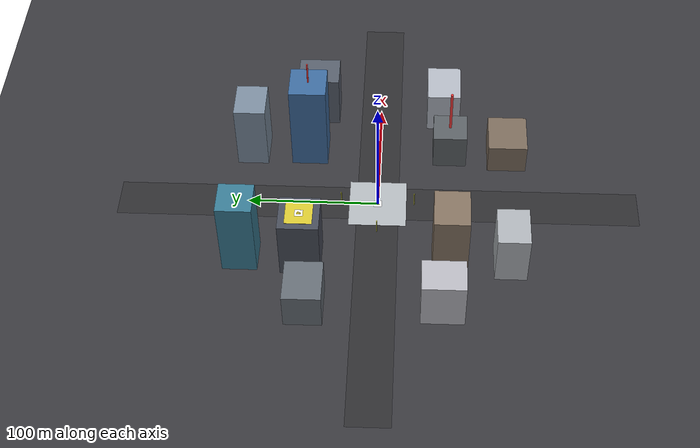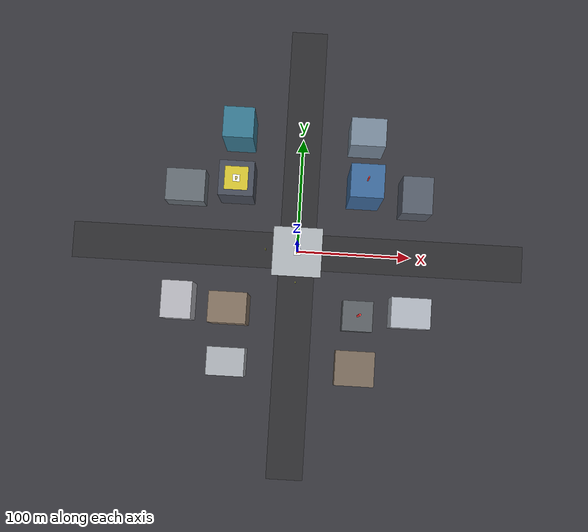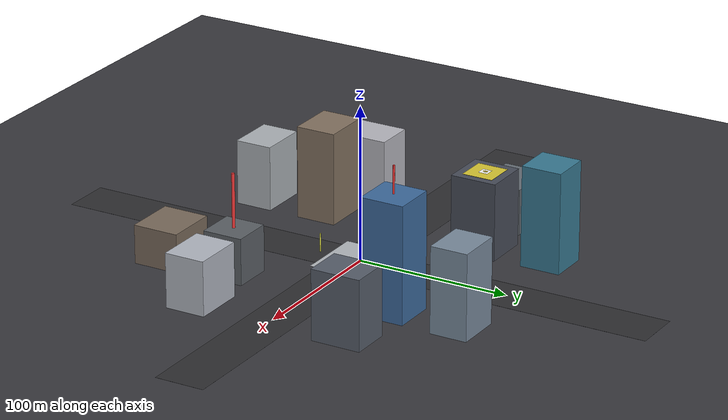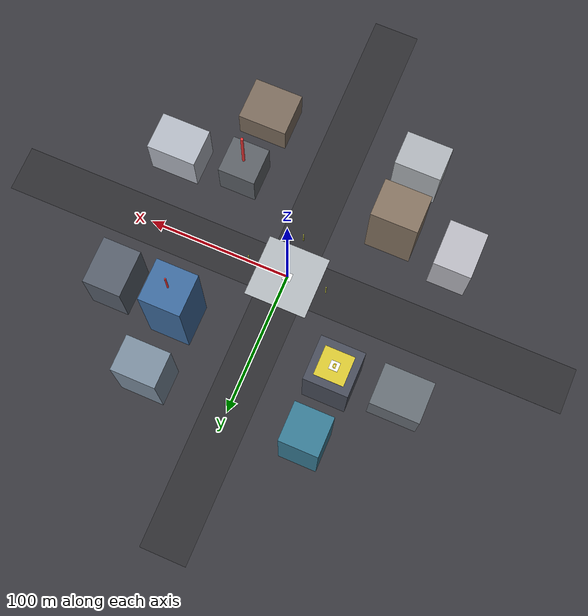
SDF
<?xml version="1.0" encoding="UTF-8"?>
<sdf version="1.9">
  <world name="city">
    <!-- ── Physics Engine Configuration (250 Hz ODE) ── -->
    <physics type="ode">
      <max_step_size>0.004</max_step_size>
      <real_time_factor>1.0</real_time_factor>
      <real_time_update_rate>250</real_time_update_rate>
    </physics>
    <gravity>0 0 -9.80665</gravity>
    <magnetic_field>6e-06 2.3e-05 -4.2e-05</magnetic_field>
    <atmosphere type="adiabatic"/>

    <scene>
      <grid>false</grid>
      <ambient>0.65 0.67 0.72 1.0</ambient>
      <background>0.70 0.80 0.92 1.0</background>
      <shadows>true</shadows>
    </scene>

    <!-- ── Sun Light ── -->
    <light name="sun" type="directional">
      <pose>40 50 500 0 0 0</pose>
      <cast_shadows>true</cast_shadows>
      <intensity>1.35</intensity>
      <direction>-0.35 -0.4 -0.84</direction>
      <diffuse>0.98 0.96 0.92 1.0</diffuse>
      <specular>0.3 0.3 0.3 1.0</specular>
    </light>

    <!-- Master Asphalt Ground Plane (800m x 800m) -->
    <model name="city_ground">
      <static>true</static>
      <link name="ground_link">
        <collision name="collision">
          <geometry>
            <plane>
              <normal>0 0 1</normal>
              <size>800 800</size>
            </plane>
          </geometry>
        </collision>
        <visual name="asphalt">
          <geometry>
            <plane>
              <normal>0 0 1</normal>
              <size>800 800</size>
            </plane>
          </geometry>
          <material>
            <ambient>0.18 0.18 0.20 1.0</ambient>
            <diffuse>0.22 0.22 0.24 1.0</diffuse>
            <specular>0.08 0.08 0.08 1.0</specular>
          </material>
        </visual>
      </link>
    </model>

    <!-- Central Plaza (44m x 44m granite drone staging area at origin) -->
    <model name="central_plaza">
      <static>true</static>
      <pose>0 0 0.02 0 0 0</pose>
      <link name="plaza_link">
        <collision name="plaza_col">
          <geometry>
            <box>
              <size>44.0 44.0 0.04</size>
            </box>
          </geometry>
        </collision>
        <visual name="plaza_vis">
          <geometry>
            <box>
              <size>44.0 44.0 0.04</size>
            </box>
          </geometry>
          <material>
            <ambient>0.62 0.64 0.66 1.0</ambient>
            <diffuse>0.70 0.72 0.74 1.0</diffuse>
            <specular>0.15 0.15 0.15 1.0</specular>
          </material>
        </visual>
      </link>
    </model>

    <!-- Ground Level Primary Dronepad at Origin (0, 0, 0.05) with 'D' Identifier -->
    <include>
      <name>takeoff_dronepad</name>
      <uri>model://dronepad</uri>
      <pose>0 0 0.045 0 0 0</pose>
    </include>

    <!-- 3D Geometric Relief Letter 'D' on Ground Dronepad -->
    <model name="ground_letter_d">
      <static>true</static>
      <pose>0 0 0.052 0 0 0</pose>
      <link name="d_spine">
        <visual name="spine_vis">
          <pose>-0.7 0 0 0 0 0</pose>
          <geometry>
            <box>
              <size>0.6 3.0 0.015</size>
            </box>
          </geometry>
          <material>
            <ambient>0.95 0.82 0.0 1.0</ambient>
            <diffuse>1.0 0.86 0.0 1.0</diffuse>
          </material>
        </visual>
        <visual name="top_bar_vis">
          <pose>0.0 1.2 0 0 0 0</pose>
          <geometry>
            <box>
              <size>1.0 0.6 0.015</size>
            </box>
          </geometry>
          <material>
            <ambient>0.95 0.82 0.0 1.0</ambient>
            <diffuse>1.0 0.86 0.0 1.0</diffuse>
          </material>
        </visual>
        <visual name="bottom_bar_vis">
          <pose>0.0 -1.2 0 0 0 0</pose>
          <geometry>
            <box>
              <size>1.0 0.6 0.015</size>
            </box>
          </geometry>
          <material>
            <ambient>0.95 0.82 0.0 1.0</ambient>
            <diffuse>1.0 0.86 0.0 1.0</diffuse>
          </material>
        </visual>
        <visual name="right_curve_vis">
          <pose>0.7 0 0 0 0 0</pose>
          <geometry>
            <box>
              <size>0.6 1.8 0.015</size>
            </box>
          </geometry>
          <material>
            <ambient>0.95 0.82 0.0 1.0</ambient>
            <diffuse>1.0 0.86 0.0 1.0</diffuse>
          </material>
        </visual>
      </link>
    </model>

    <!-- North-South Main Avenue Roadway (32m wide corridor) -->
    <model name="avenue_ns">
      <static>true</static>
      <pose>0 0 0.01 0 0 0</pose>
      <link name="link">
        <visual name="road">
          <geometry>
            <box>
              <size>32.0 400.0 0.02</size>
            </box>
          </geometry>
          <material>
            <ambient>0.14 0.14 0.15 1.0</ambient>
            <diffuse>0.18 0.18 0.19 1.0</diffuse>
          </material>
        </visual>
      </link>
    </model>

    <!-- East-West Main Boulevard Roadway (32m wide corridor) -->
    <model name="boulevard_ew">
      <static>true</static>
      <pose>0 0 0.01 0 0 0</pose>
      <link name="link">
        <visual name="road">
          <geometry>
            <box>
              <size>400.0 32.0 0.02</size>
            </box>
          </geometry>
          <material>
            <ambient>0.14 0.14 0.15 1.0</ambient>
            <diffuse>0.18 0.18 0.19 1.0</diffuse>
          </material>
        </visual>
      </link>
    </model>

    <!-- Apex Financial Tower (75m High-Rise Glass Skyscraper) -->
    <model name="apex_tower">
      <static>true</static>
      <pose>55 55 37.5 0 0 0</pose>
      <link name="tower_body">
        <collision name="col">
          <geometry>
            <box>
              <size>28.0 28.0 75.0</size>
            </box>
          </geometry>
        </collision>
        <visual name="glass_vis">
          <geometry>
            <box>
              <size>28.0 28.0 75.0</size>
            </box>
          </geometry>
          <material>
            <ambient>0.18 0.32 0.48 1.0</ambient>
            <diffuse>0.24 0.42 0.62 1.0</diffuse>
            <specular>0.7 0.7 0.8 1.0</specular>
          </material>
        </visual>
      </link>
      <!-- Telecommunications Spire on Apex Tower (+18m, Total height: 93m) -->
      <link name="spire">
        <pose>0 0 46.5 0 0 0</pose>
        <collision name="spire_col">
          <geometry>
            <cylinder>
              <radius>0.6</radius>
              <length>18.0</length>
            </cylinder>
          </geometry>
        </collision>
        <visual name="spire_vis">
          <geometry>
            <cylinder>
              <radius>0.6</radius>
              <length>18.0</length>
            </cylinder>
          </geometry>
          <material>
            <ambient>0.85 0.15 0.15 1.0</ambient>
            <diffuse>0.92 0.20 0.20 1.0</diffuse>
          </material>
        </visual>
      </link>
    </model>

    <!-- Commerce Plaza Building (45m Commercial Block) -->
    <model name="commerce_plaza">
      <static>true</static>
      <pose>100 50 22.5 0 0 0</pose>
      <link name="link">
        <collision name="col">
          <geometry>
            <box>
              <size>26.0 32.0 45.0</size>
            </box>
          </geometry>
        </collision>
        <visual name="vis">
          <geometry>
            <box>
              <size>26.0 32.0 45.0</size>
            </box>
          </geometry>
          <material>
            <ambient>0.26 0.28 0.32 1.0</ambient>
            <diffuse>0.34 0.37 0.42 1.0</diffuse>
            <specular>0.3 0.3 0.3 1.0</specular>
          </material>
        </visual>
      </link>
    </model>

    <!-- Banking Center Tower (55m Silver Glass High-Rise) -->
    <model name="banking_center">
      <static>true</static>
      <pose>55 100 27.5 0 0 0</pose>
      <link name="link">
        <collision name="col">
          <geometry>
            <box>
              <size>30.0 24.0 55.0</size>
            </box>
          </geometry>
        </collision>
        <visual name="vis">
          <geometry>
            <box>
              <size>30.0 24.0 55.0</size>
            </box>
          </geometry>
          <material>
            <ambient>0.38 0.44 0.50 1.0</ambient>
            <diffuse>0.48 0.55 0.62 1.0</diffuse>
            <specular>0.6 0.6 0.6 1.0</specular>
          </material>
        </visual>
      </link>
    </model>

    <!-- Skyline Tech Tower (50m High-Rise with Skyscraper Rooftop Helipad) -->
    <model name="tech_tower">
      <static>true</static>
      <pose>-55 55 25.0 0 0 0</pose>
      <link name="tower_body">
        <collision name="col">
          <geometry>
            <box>
              <size>30.0 30.0 50.0</size>
            </box>
          </geometry>
        </collision>
        <visual name="dark_glass_vis">
          <geometry>
            <box>
              <size>30.0 30.0 50.0</size>
            </box>
          </geometry>
          <material>
            <ambient>0.20 0.22 0.26 1.0</ambient>
            <diffuse>0.28 0.30 0.35 1.0</diffuse>
            <specular>0.5 0.5 0.5 1.0</specular>
          </material>
        </visual>
      </link>

      <!-- Helipad Elevated Landing Platform on Roof -->
      <link name="roof_platform">
        <pose>0 0 25.1 0 0 0</pose>
        <collision name="plat_col">
          <geometry>
            <box>
              <size>20.0 20.0 0.2</size>
            </box>
          </geometry>
        </collision>
        <visual name="plat_vis">
          <geometry>
            <box>
              <size>20.0 20.0 0.2</size>
            </box>
          </geometry>
          <material>
            <ambient>0.75 0.70 0.15 1.0</ambient>
            <diffuse>0.85 0.78 0.20 1.0</diffuse>
          </material>
        </visual>
      </link>
    </model>

    <!-- Rooftop Dronepad at 50.25m Altitude (North=-55, East=55) with 'D' Identifier -->
    <include>
      <name>rooftop_dronepad</name>
      <uri>model://dronepad</uri>
      <pose>-55 55 50.25 0 0 0</pose>
    </include>

    <!-- 3D Geometric Relief Letter 'D' on Rooftop Dronepad -->
    <model name="roof_letter_d">
      <static>true</static>
      <pose>-55 55 50.32 0 0 0</pose>
      <link name="d_spine">
        <visual name="spine_vis">
          <pose>-0.7 0 0 0 0 0</pose>
          <geometry>
            <box>
              <size>0.6 3.0 0.015</size>
            </box>
          </geometry>
          <material>
            <ambient>0.95 0.82 0.0 1.0</ambient>
            <diffuse>1.0 0.86 0.0 1.0</diffuse>
          </material>
        </visual>
        <visual name="top_bar_vis">
          <pose>0.0 1.2 0 0 0 0</pose>
          <geometry>
            <box>
              <size>1.0 0.6 0.015</size>
            </box>
          </geometry>
          <material>
            <ambient>0.95 0.82 0.0 1.0</ambient>
            <diffuse>1.0 0.86 0.0 1.0</diffuse>
          </material>
        </visual>
        <visual name="bottom_bar_vis">
          <pose>0.0 -1.2 0 0 0 0</pose>
          <geometry>
            <box>
              <size>1.0 0.6 0.015</size>
            </box>
          </geometry>
          <material>
            <ambient>0.95 0.82 0.0 1.0</ambient>
            <diffuse>1.0 0.86 0.0 1.0</diffuse>
          </material>
        </visual>
        <visual name="right_curve_vis">
          <pose>0.7 0 0 0 0 0</pose>
          <geometry>
            <box>
              <size>0.6 1.8 0.015</size>
            </box>
          </geometry>
          <material>
            <ambient>0.95 0.82 0.0 1.0</ambient>
            <diffuse>1.0 0.86 0.0 1.0</diffuse>
          </material>
        </visual>
      </link>
    </model>

    <!-- Data Center Hub (30m Solid Industrial Block) -->
    <model name="data_center">
      <static>true</static>
      <pose>-100 50 15.0 0 0 0</pose>
      <link name="link">
        <collision name="col">
          <geometry>
            <box>
              <size>34.0 28.0 30.0</size>
            </box>
          </geometry>
        </collision>
        <visual name="vis">
          <geometry>
            <box>
              <size>34.0 28.0 30.0</size>
            </box>
          </geometry>
          <material>
            <ambient>0.32 0.35 0.38 1.0</ambient>
            <diffuse>0.40 0.43 0.46 1.0</diffuse>
          </material>
        </visual>
      </link>
    </model>

    <!-- Quantum Research Tower (65m Cyan Glass Skyscraper) -->
    <model name="quantum_tower">
      <static>true</static>
      <pose>-55 100 32.5 0 0 0</pose>
      <link name="link">
        <collision name="col">
          <geometry>
            <box>
              <size>26.0 26.0 65.0</size>
            </box>
          </geometry>
        </collision>
        <visual name="vis">
          <geometry>
            <box>
              <size>26.0 26.0 65.0</size>
            </box>
          </geometry>
          <material>
            <ambient>0.16 0.38 0.46 1.0</ambient>
            <diffuse>0.22 0.48 0.58 1.0</diffuse>
            <specular>0.7 0.7 0.8 1.0</specular>
          </material>
        </visual>
      </link>
    </model>

    <!-- Metropolis Grand Hotel (60m Sandstone & Bronze High-Rise) -->
    <model name="grand_hotel">
      <static>true</static>
      <pose>-55 -55 30.0 0 0 0</pose>
      <link name="link">
        <collision name="col">
          <geometry>
            <box>
              <size>32.0 26.0 60.0</size>
            </box>
          </geometry>
        </collision>
        <visual name="vis">
          <geometry>
            <box>
              <size>32.0 26.0 60.0</size>
            </box>
          </geometry>
          <material>
            <ambient>0.42 0.36 0.30 1.0</ambient>
            <diffuse>0.52 0.45 0.38 1.0</diffuse>
            <specular>0.4 0.35 0.3 1.0</specular>
          </material>
        </visual>
      </link>
    </model>

    <!-- Residential Tower Alpha (40m Apartment Complex) -->
    <model name="residential_alpha">
      <static>true</static>
      <pose>-100 -50 20.0 0 0 0</pose>
      <link name="link">
        <collision name="col">
          <geometry>
            <box>
              <size>26.0 32.0 40.0</size>
            </box>
          </geometry>
        </collision>
        <visual name="vis">
          <geometry>
            <box>
              <size>26.0 32.0 40.0</size>
            </box>
          </geometry>
          <material>
            <ambient>0.62 0.62 0.65 1.0</ambient>
            <diffuse>0.72 0.72 0.75 1.0</diffuse>
          </material>
        </visual>
      </link>
    </model>

    <!-- Residential Tower Beta (42m Apartment Complex) -->
    <model name="residential_beta">
      <static>true</static>
      <pose>-55 -100 21.0 0 0 0</pose>
      <link name="link">
        <collision name="col">
          <geometry>
            <box>
              <size>32.0 24.0 42.0</size>
            </box>
          </geometry>
        </collision>
        <visual name="vis">
          <geometry>
            <box>
              <size>32.0 24.0 42.0</size>
            </box>
          </geometry>
          <material>
            <ambient>0.58 0.60 0.62 1.0</ambient>
            <diffuse>0.68 0.70 0.72 1.0</diffuse>
          </material>
        </visual>
      </link>
    </model>

    <!-- Broadcast Station & Mast (30m Building + 35m Radio Mast = 65m Total) -->
    <model name="broadcast_tower">
      <static>true</static>
      <pose>55 -55 15.0 0 0 0</pose>
      <link name="base_building">
        <collision name="base_col">
          <geometry>
            <box>
              <size>26.0 26.0 30.0</size>
            </box>
          </geometry>
        </collision>
        <visual name="base_vis">
          <geometry>
            <box>
              <size>26.0 26.0 30.0</size>
            </box>
          </geometry>
          <material>
            <ambient>0.28 0.30 0.32 1.0</ambient>
            <diffuse>0.36 0.38 0.40 1.0</diffuse>
          </material>
        </visual>
      </link>

      <!-- Lattice Antenna Mast -->
      <link name="antenna_mast">
        <pose>0 0 32.5 0 0 0</pose>
        <collision name="mast_col">
          <geometry>
            <cylinder>
              <radius>1.0</radius>
              <length>35.0</length>
            </cylinder>
          </geometry>
        </collision>
        <visual name="mast_vis">
          <geometry>
            <cylinder>
              <radius>1.0</radius>
              <length>35.0</length>
            </cylinder>
          </geometry>
          <material>
            <ambient>0.88 0.18 0.18 1.0</ambient>
            <diffuse>0.95 0.22 0.22 1.0</diffuse>
          </material>
        </visual>
      </link>
    </model>

    <!-- Civic Center Hall (35m Marble & Tinted Glass Pavilion) -->
    <model name="civic_center">
      <static>true</static>
      <pose>100 -50 17.5 0 0 0</pose>
      <link name="link">
        <collision name="col">
          <geometry>
            <box>
              <size>34.0 26.0 35.0</size>
            </box>
          </geometry>
        </collision>
        <visual name="vis">
          <geometry>
            <box>
              <size>34.0 26.0 35.0</size>
            </box>
          </geometry>
          <material>
            <ambient>0.60 0.62 0.65 1.0</ambient>
            <diffuse>0.70 0.72 0.76 1.0</diffuse>
            <specular>0.4 0.4 0.4 1.0</specular>
          </material>
        </visual>
      </link>
    </model>

    <!-- Exhibition & Convention Pavilion (25m Wide Hall) -->
    <model name="convention_hall">
      <static>true</static>
      <pose>55 -100 12.5 0 0 0</pose>
      <link name="link">
        <collision name="col">
          <geometry>
            <box>
              <size>34.0 30.0 25.0</size>
            </box>
          </geometry>
        </collision>
        <visual name="vis">
          <geometry>
            <box>
              <size>34.0 30.0 25.0</size>
            </box>
          </geometry>
          <material>
            <ambient>0.40 0.35 0.30 1.0</ambient>
            <diffuse>0.48 0.42 0.36 1.0</diffuse>
          </material>
        </visual>
      </link>
    </model>

    <!-- North Light Pylon (12m tall, at North = 30m) -->
    <model name="pylon_north">
      <static>true</static>
      <pose>0 28 6.0 0 0 0</pose>
      <link name="link">
        <collision name="col">
          <geometry>
            <cylinder>
              <radius>0.4</radius>
              <length>12.0</length>
            </cylinder>
          </geometry>
        </collision>
        <visual name="vis">
          <geometry>
            <cylinder>
              <radius>0.4</radius>
              <length>12.0</length>
            </cylinder>
          </geometry>
          <material>
            <ambient>0.8 0.8 0.2 1.0</ambient>
            <diffuse>0.9 0.9 0.3 1.0</diffuse>
          </material>
        </visual>
      </link>
    </model>

    <!-- South Light Pylon (12m tall, at South = -30m) -->
    <model name="pylon_south">
      <static>true</static>
      <pose>0 -28 6.0 0 0 0</pose>
      <link name="link">
        <collision name="col">
          <geometry>
            <cylinder>
              <radius>0.4</radius>
              <length>12.0</length>
            </cylinder>
          </geometry>
        </collision>
        <visual name="vis">
          <geometry>
            <cylinder>
              <radius>0.4</radius>
              <length>12.0</length>
            </cylinder>
          </geometry>
          <material>
            <ambient>0.8 0.8 0.2 1.0</ambient>
            <diffuse>0.9 0.9 0.3 1.0</diffuse>
          </material>
        </visual>
      </link>
    </model>

    <!-- East Light Pylon (12m tall, at East = 28m) -->
    <model name="pylon_east">
      <static>true</static>
      <pose>28 0 6.0 0 0 0</pose>
      <link name="link">
        <collision name="col">
          <geometry>
            <cylinder>
              <radius>0.4</radius>
              <length>12.0</length>
            </cylinder>
          </geometry>
        </collision>
        <visual name="vis">
          <geometry>
            <cylinder>
              <radius>0.4</radius>
              <length>12.0</length>
            </cylinder>
          </geometry>
          <material>
            <ambient>0.8 0.8 0.2 1.0</ambient>
            <diffuse>0.9 0.9 0.3 1.0</diffuse>
          </material>
        </visual>
      </link>
    </model>

    <!-- West Light Pylon (12m tall, at West = -28m) -->
    <model name="pylon_west">
      <static>true</static>
      <pose>-28 0 6.0 0 0 0</pose>
      <link name="link">
        <collision name="col">
          <geometry>
            <cylinder>
              <radius>0.4</radius>
              <length>12.0</length>
            </cylinder>
          </geometry>
        </collision>
        <visual name="vis">
          <geometry>
            <cylinder>
              <radius>0.4</radius>
              <length>12.0</length>
            </cylinder>
          </geometry>
          <material>
            <ambient>0.8 0.8 0.2 1.0</ambient>
            <diffuse>0.9 0.9 0.3 1.0</diffuse>
          </material>
        </visual>
      </link>
    </model>

  </world>
</sdf>

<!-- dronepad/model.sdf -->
<sdf version="1.9">
  <model name="dronepad">
    <static>true</static>
    <pose>0 0 0.005 0 0 0</pose>
    <link name="base">
      <visual name="base_visual">
        <geometry>
          <plane>
            <normal>0 0 1</normal>
            <size>6 6</size>
          </plane>
        </geometry>
        <material>
          <diffuse>1 1 1 1</diffuse>
          <specular>0.3 0.3 0.3 1</specular>
          <pbr>
            <metal>
              <albedo_map>model://dronepad/dronepad.png</albedo_map>
            </metal>
          </pbr>
        </material>
      </visual>

      <collision name="base_collision">
        <geometry>
          <box>
            <size>6 6 0.02</size>
          </box>
        </geometry>
      </collision>
    </link>
  </model>
</sdf>
